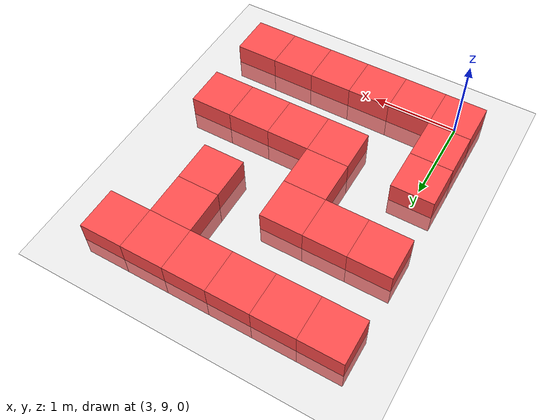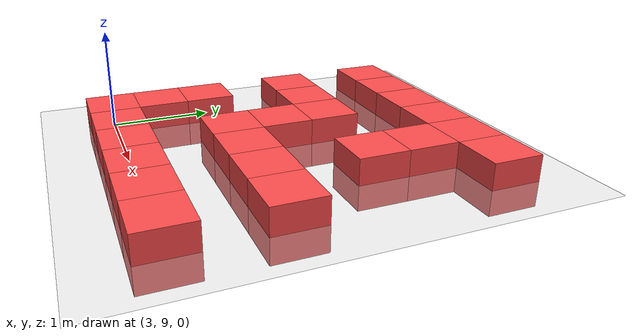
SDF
<sdf version="1.6">
 <world name="default">
  <model name="ground_plane">
   <static>1</static>
   <link name="link">
    <collision name="collision">
     <geometry><plane><normal>0 0 1</normal><size>100 100</size></plane></geometry>
     <surface><friction><ode><mu>100</mu><mu2>50</mu2></ode></friction></surface>
    </collision>
    <visual name="visual">
     <cast_shadows>0</cast_shadows>
     <geometry><plane><normal>0 0 1</normal><size>100 100</size></plane></geometry>
     <material>
      <script><uri>file://media/materials/scripts/gazebo.material</uri><name>Gazebo/Grey</name></script>
     </material>
    </visual>
   </link>
  </model>
  <model name="Box_Red_168">
   <link name="link_0">
    <inertial>
     <mass>1</mass>
     <inertia>
      <ixx>0.166667</ixx>
      <ixy>0</ixy>
      <ixz>0</ixz>
      <iyy>0.166667</iyy>
      <iyz>0</iyz>
      <izz>0.166667</izz>
     </inertia>
    </inertial>
    <visual name="visual">
     <geometry><box><size>0.5 0.5 0.5</size></box></geometry>
     <material>
      <lighting>1</lighting>
      <script><uri>file://media/materials/scripts/gazebo.material</uri><name>Gazebo/Grey</name></script>
      <ambient>1 0.3 0.3 1</ambient>
      <diffuse>0.7 0.7 0.7 1</diffuse>
      <specular>0.01 0.01 0.01 1</specular>
      <emissive>0 0 0 1</emissive>
      <shader type="vertex"><normal_map>__default__</normal_map></shader>
     </material>
    </visual>
    <collision name="collision">
     <geometry><box><size>0.5 0.5 0.5</size></box></geometry>
     <surface>
      <friction>
       <ode><mu>1</mu><mu2>1</mu2><fdir1>0 0 0</fdir1><slip1>0</slip1><slip2>0</slip2></ode>
       <torsional>
        <coefficient>1</coefficient>
        <patch_radius>0</patch_radius>
        <surface_radius>0</surface_radius>
        <use_patch_radius>1</use_patch_radius>
        <ode><slip>0</slip></ode>
       </torsional>
      </friction>
      <bounce><restitution_coefficient>0</restitution_coefficient><threshold>1e+06</threshold></bounce>
      <contact>
       <collide_without_contact>0</collide_without_contact>
       <collide_without_contact_bitmask>1</collide_without_contact_bitmask>
       <collide_bitmask>1</collide_bitmask>
       <ode>
        <soft_cfm>0</soft_cfm>
        <soft_erp>0.2</soft_erp>
        <kp>1e+13</kp>
        <kd>1</kd>
        <max_vel>0.01</max_vel>
        <min_depth>0</min_depth>
       </ode>
       <bullet>
        <split_impulse>1</split_impulse>
        <split_impulse_penetration_threshold>-0.01</split_impulse_penetration_threshold>
        <soft_cfm>0</soft_cfm>
        <soft_erp>0.2</soft_erp>
        <kp>1e+13</kp>
        <kd>1</kd>
       </bullet>
      </contact>
     </surface>
    </collision>
   </link>
   <static>0</static>
   <pose>3.000 9.000 0.000 0 0 0</pose>
  </model>
  <model name="Box_Red_169">
   <link name="link_0">
    <inertial>
     <mass>1</mass>
     <inertia>
      <ixx>0.166667</ixx>
      <ixy>0</ixy>
      <ixz>0</ixz>
      <iyy>0.166667</iyy>
      <iyz>0</iyz>
      <izz>0.166667</izz>
     </inertia>
    </inertial>
    <visual name="visual">
     <geometry><box><size>0.5 0.5 0.5</size></box></geometry>
     <material>
      <lighting>1</lighting>
      <script><uri>file://media/materials/scripts/gazebo.material</uri><name>Gazebo/Grey</name></script>
      <ambient>1 0.3 0.3 1</ambient>
      <diffuse>0.7 0.7 0.7 1</diffuse>
      <specular>0.01 0.01 0.01 1</specular>
      <emissive>0 0 0 1</emissive>
      <shader type="vertex"><normal_map>__default__</normal_map></shader>
     </material>
    </visual>
    <collision name="collision">
     <geometry><box><size>0.5 0.5 0.5</size></box></geometry>
     <surface>
      <friction>
       <ode><mu>1</mu><mu2>1</mu2><fdir1>0 0 0</fdir1><slip1>0</slip1><slip2>0</slip2></ode>
       <torsional>
        <coefficient>1</coefficient>
        <patch_radius>0</patch_radius>
        <surface_radius>0</surface_radius>
        <use_patch_radius>1</use_patch_radius>
        <ode><slip>0</slip></ode>
       </torsional>
      </friction>
      <bounce><restitution_coefficient>0</restitution_coefficient><threshold>1e+06</threshold></bounce>
      <contact>
       <collide_without_contact>0</collide_without_contact>
       <collide_without_contact_bitmask>1</collide_without_contact_bitmask>
       <collide_bitmask>1</collide_bitmask>
       <ode>
        <soft_cfm>0</soft_cfm>
        <soft_erp>0.2</soft_erp>
        <kp>1e+13</kp>
        <kd>1</kd>
        <max_vel>0.01</max_vel>
        <min_depth>0</min_depth>
       </ode>
       <bullet>
        <split_impulse>1</split_impulse>
        <split_impulse_penetration_threshold>-0.01</split_impulse_penetration_threshold>
        <soft_cfm>0</soft_cfm>
        <soft_erp>0.2</soft_erp>
        <kp>1e+13</kp>
        <kd>1</kd>
       </bullet>
      </contact>
     </surface>
    </collision>
   </link>
   <static>0</static>
   <pose>3.000 9.500 0.000 0 0 0</pose>
  </model>
  <model name="Box_Red_170">
   <link name="link_0">
    <inertial>
     <mass>1</mass>
     <inertia>
      <ixx>0.166667</ixx>
      <ixy>0</ixy>
      <ixz>0</ixz>
      <iyy>0.166667</iyy>
      <iyz>0</iyz>
      <izz>0.166667</izz>
     </inertia>
    </inertial>
    <visual name="visual">
     <geometry><box><size>0.5 0.5 0.5</size></box></geometry>
     <material>
      <lighting>1</lighting>
      <script><uri>file://media/materials/scripts/gazebo.material</uri><name>Gazebo/Grey</name></script>
      <ambient>1 0.3 0.3 1</ambient>
      <diffuse>0.7 0.7 0.7 1</diffuse>
      <specular>0.01 0.01 0.01 1</specular>
      <emissive>0 0 0 1</emissive>
      <shader type="vertex"><normal_map>__default__</normal_map></shader>
     </material>
    </visual>
    <collision name="collision">
     <geometry><box><size>0.5 0.5 0.5</size></box></geometry>
     <surface>
      <friction>
       <ode><mu>1</mu><mu2>1</mu2><fdir1>0 0 0</fdir1><slip1>0</slip1><slip2>0</slip2></ode>
       <torsional>
        <coefficient>1</coefficient>
        <patch_radius>0</patch_radius>
        <surface_radius>0</surface_radius>
        <use_patch_radius>1</use_patch_radius>
        <ode><slip>0</slip></ode>
       </torsional>
      </friction>
      <bounce><restitution_coefficient>0</restitution_coefficient><threshold>1e+06</threshold></bounce>
      <contact>
       <collide_without_contact>0</collide_without_contact>
       <collide_without_contact_bitmask>1</collide_without_contact_bitmask>
       <collide_bitmask>1</collide_bitmask>
       <ode>
        <soft_cfm>0</soft_cfm>
        <soft_erp>0.2</soft_erp>
        <kp>1e+13</kp>
        <kd>1</kd>
        <max_vel>0.01</max_vel>
        <min_depth>0</min_depth>
       </ode>
       <bullet>
        <split_impulse>1</split_impulse>
        <split_impulse_penetration_threshold>-0.01</split_impulse_penetration_threshold>
        <soft_cfm>0</soft_cfm>
        <soft_erp>0.2</soft_erp>
        <kp>1e+13</kp>
        <kd>1</kd>
       </bullet>
      </contact>
     </surface>
    </collision>
   </link>
   <static>0</static>
   <pose>3.000 10.000 0.000 0 0 0</pose>
  </model>
  <model name="Box_Red_172">
   <link name="link_0">
    <inertial>
     <mass>1</mass>
     <inertia>
      <ixx>0.166667</ixx>
      <ixy>0</ixy>
      <ixz>0</ixz>
      <iyy>0.166667</iyy>
      <iyz>0</iyz>
      <izz>0.166667</izz>
     </inertia>
    </inertial>
    <visual name="visual">
     <geometry><box><size>0.5 0.5 0.5</size></box></geometry>
     <material>
      <lighting>1</lighting>
      <script><uri>file://media/materials/scripts/gazebo.material</uri><name>Gazebo/Grey</name></script>
      <ambient>1 0.3 0.3 1</ambient>
      <diffuse>0.7 0.7 0.7 1</diffuse>
      <specular>0.01 0.01 0.01 1</specular>
      <emissive>0 0 0 1</emissive>
      <shader type="vertex"><normal_map>__default__</normal_map></shader>
     </material>
    </visual>
    <collision name="collision">
     <geometry><box><size>0.5 0.5 0.5</size></box></geometry>
     <surface>
      <friction>
       <ode><mu>1</mu><mu2>1</mu2><fdir1>0 0 0</fdir1><slip1>0</slip1><slip2>0</slip2></ode>
       <torsional>
        <coefficient>1</coefficient>
        <patch_radius>0</patch_radius>
        <surface_radius>0</surface_radius>
        <use_patch_radius>1</use_patch_radius>
        <ode><slip>0</slip></ode>
       </torsional>
      </friction>
      <bounce><restitution_coefficient>0</restitution_coefficient><threshold>1e+06</threshold></bounce>
      <contact>
       <collide_without_contact>0</collide_without_contact>
       <collide_without_contact_bitmask>1</collide_without_contact_bitmask>
       <collide_bitmask>1</collide_bitmask>
       <ode>
        <soft_cfm>0</soft_cfm>
        <soft_erp>0.2</soft_erp>
        <kp>1e+13</kp>
        <kd>1</kd>
        <max_vel>0.01</max_vel>
        <min_depth>0</min_depth>
       </ode>
       <bullet>
        <split_impulse>1</split_impulse>
        <split_impulse_penetration_threshold>-0.01</split_impulse_penetration_threshold>
        <soft_cfm>0</soft_cfm>
        <soft_erp>0.2</soft_erp>
        <kp>1e+13</kp>
        <kd>1</kd>
       </bullet>
      </contact>
     </surface>
    </collision>
   </link>
   <static>0</static>
   <pose>3.000 11.000 0.000 0 0 0</pose>
  </model>
  <model name="Box_Red_174">
   <link name="link_0">
    <inertial>
     <mass>1</mass>
     <inertia>
      <ixx>0.166667</ixx>
      <ixy>0</ixy>
      <ixz>0</ixz>
      <iyy>0.166667</iyy>
      <iyz>0</iyz>
      <izz>0.166667</izz>
     </inertia>
    </inertial>
    <visual name="visual">
     <geometry><box><size>0.5 0.5 0.5</size></box></geometry>
     <material>
      <lighting>1</lighting>
      <script><uri>file://media/materials/scripts/gazebo.material</uri><name>Gazebo/Grey</name></script>
      <ambient>1 0.3 0.3 1</ambient>
      <diffuse>0.7 0.7 0.7 1</diffuse>
      <specular>0.01 0.01 0.01 1</specular>
      <emissive>0 0 0 1</emissive>
      <shader type="vertex"><normal_map>__default__</normal_map></shader>
     </material>
    </visual>
    <collision name="collision">
     <geometry><box><size>0.5 0.5 0.5</size></box></geometry>
     <surface>
      <friction>
       <ode><mu>1</mu><mu2>1</mu2><fdir1>0 0 0</fdir1><slip1>0</slip1><slip2>0</slip2></ode>
       <torsional>
        <coefficient>1</coefficient>
        <patch_radius>0</patch_radius>
        <surface_radius>0</surface_radius>
        <use_patch_radius>1</use_patch_radius>
        <ode><slip>0</slip></ode>
       </torsional>
      </friction>
      <bounce><restitution_coefficient>0</restitution_coefficient><threshold>1e+06</threshold></bounce>
      <contact>
       <collide_without_contact>0</collide_without_contact>
       <collide_without_contact_bitmask>1</collide_without_contact_bitmask>
       <collide_bitmask>1</collide_bitmask>
       <ode>
        <soft_cfm>0</soft_cfm>
        <soft_erp>0.2</soft_erp>
        <kp>1e+13</kp>
        <kd>1</kd>
        <max_vel>0.01</max_vel>
        <min_depth>0</min_depth>
       </ode>
       <bullet>
        <split_impulse>1</split_impulse>
        <split_impulse_penetration_threshold>-0.01</split_impulse_penetration_threshold>
        <soft_cfm>0</soft_cfm>
        <soft_erp>0.2</soft_erp>
        <kp>1e+13</kp>
        <kd>1</kd>
       </bullet>
      </contact>
     </surface>
    </collision>
   </link>
   <static>0</static>
   <pose>3.000 12.000 0.000 0 0 0</pose>
  </model>
  <model name="Box_Red_193">
   <link name="link_0">
    <inertial>
     <mass>1</mass>
     <inertia>
      <ixx>0.166667</ixx>
      <ixy>0</ixy>
      <ixz>0</ixz>
      <iyy>0.166667</iyy>
      <iyz>0</iyz>
      <izz>0.166667</izz>
     </inertia>
    </inertial>
    <visual name="visual">
     <geometry><box><size>0.5 0.5 0.5</size></box></geometry>
     <material>
      <lighting>1</lighting>
      <script><uri>file://media/materials/scripts/gazebo.material</uri><name>Gazebo/Grey</name></script>
      <ambient>1 0.3 0.3 1</ambient>
      <diffuse>0.7 0.7 0.7 1</diffuse>
      <specular>0.01 0.01 0.01 1</specular>
      <emissive>0 0 0 1</emissive>
      <shader type="vertex"><normal_map>__default__</normal_map></shader>
     </material>
    </visual>
    <collision name="collision">
     <geometry><box><size>0.5 0.5 0.5</size></box></geometry>
     <surface>
      <friction>
       <ode><mu>1</mu><mu2>1</mu2><fdir1>0 0 0</fdir1><slip1>0</slip1><slip2>0</slip2></ode>
       <torsional>
        <coefficient>1</coefficient>
        <patch_radius>0</patch_radius>
        <surface_radius>0</surface_radius>
        <use_patch_radius>1</use_patch_radius>
        <ode><slip>0</slip></ode>
       </torsional>
      </friction>
      <bounce><restitution_coefficient>0</restitution_coefficient><threshold>1e+06</threshold></bounce>
      <contact>
       <collide_without_contact>0</collide_without_contact>
       <collide_without_contact_bitmask>1</collide_without_contact_bitmask>
       <collide_bitmask>1</collide_bitmask>
       <ode>
        <soft_cfm>0</soft_cfm>
        <soft_erp>0.2</soft_erp>
        <kp>1e+13</kp>
        <kd>1</kd>
        <max_vel>0.01</max_vel>
        <min_depth>0</min_depth>
       </ode>
       <bullet>
        <split_impulse>1</split_impulse>
        <split_impulse_penetration_threshold>-0.01</split_impulse_penetration_threshold>
        <soft_cfm>0</soft_cfm>
        <soft_erp>0.2</soft_erp>
        <kp>1e+13</kp>
        <kd>1</kd>
       </bullet>
      </contact>
     </surface>
    </collision>
   </link>
   <static>0</static>
   <pose>3.500 9.000 0.000 0 0 0</pose>
  </model>
  <model name="Box_Red_197">
   <link name="link_0">
    <inertial>
     <mass>1</mass>
     <inertia>
      <ixx>0.166667</ixx>
      <ixy>0</ixy>
      <ixz>0</ixz>
      <iyy>0.166667</iyy>
      <iyz>0</iyz>
      <izz>0.166667</izz>
     </inertia>
    </inertial>
    <visual name="visual">
     <geometry><box><size>0.5 0.5 0.5</size></box></geometry>
     <material>
      <lighting>1</lighting>
      <script><uri>file://media/materials/scripts/gazebo.material</uri><name>Gazebo/Grey</name></script>
      <ambient>1 0.3 0.3 1</ambient>
      <diffuse>0.7 0.7 0.7 1</diffuse>
      <specular>0.01 0.01 0.01 1</specular>
      <emissive>0 0 0 1</emissive>
      <shader type="vertex"><normal_map>__default__</normal_map></shader>
     </material>
    </visual>
    <collision name="collision">
     <geometry><box><size>0.5 0.5 0.5</size></box></geometry>
     <surface>
      <friction>
       <ode><mu>1</mu><mu2>1</mu2><fdir1>0 0 0</fdir1><slip1>0</slip1><slip2>0</slip2></ode>
       <torsional>
        <coefficient>1</coefficient>
        <patch_radius>0</patch_radius>
        <surface_radius>0</surface_radius>
        <use_patch_radius>1</use_patch_radius>
        <ode><slip>0</slip></ode>
       </torsional>
      </friction>
      <bounce><restitution_coefficient>0</restitution_coefficient><threshold>1e+06</threshold></bounce>
      <contact>
       <collide_without_contact>0</collide_without_contact>
       <collide_without_contact_bitmask>1</collide_without_contact_bitmask>
       <collide_bitmask>1</collide_bitmask>
       <ode>
        <soft_cfm>0</soft_cfm>
        <soft_erp>0.2</soft_erp>
        <kp>1e+13</kp>
        <kd>1</kd>
        <max_vel>0.01</max_vel>
        <min_depth>0</min_depth>
       </ode>
       <bullet>
        <split_impulse>1</split_impulse>
        <split_impulse_penetration_threshold>-0.01</split_impulse_penetration_threshold>
        <soft_cfm>0</soft_cfm>
        <soft_erp>0.2</soft_erp>
        <kp>1e+13</kp>
        <kd>1</kd>
       </bullet>
      </contact>
     </surface>
    </collision>
   </link>
   <static>0</static>
   <pose>3.500 11.000 0.000 0 0 0</pose>
  </model>
  <model name="Box_Red_199">
   <link name="link_0">
    <inertial>
     <mass>1</mass>
     <inertia>
      <ixx>0.166667</ixx>
      <ixy>0</ixy>
      <ixz>0</ixz>
      <iyy>0.166667</iyy>
      <iyz>0</iyz>
      <izz>0.166667</izz>
     </inertia>
    </inertial>
    <visual name="visual">
     <geometry><box><size>0.5 0.5 0.5</size></box></geometry>
     <material>
      <lighting>1</lighting>
      <script><uri>file://media/materials/scripts/gazebo.material</uri><name>Gazebo/Grey</name></script>
      <ambient>1 0.3 0.3 1</ambient>
      <diffuse>0.7 0.7 0.7 1</diffuse>
      <specular>0.01 0.01 0.01 1</specular>
      <emissive>0 0 0 1</emissive>
      <shader type="vertex"><normal_map>__default__</normal_map></shader>
     </material>
    </visual>
    <collision name="collision">
     <geometry><box><size>0.5 0.5 0.5</size></box></geometry>
     <surface>
      <friction>
       <ode><mu>1</mu><mu2>1</mu2><fdir1>0 0 0</fdir1><slip1>0</slip1><slip2>0</slip2></ode>
       <torsional>
        <coefficient>1</coefficient>
        <patch_radius>0</patch_radius>
        <surface_radius>0</surface_radius>
        <use_patch_radius>1</use_patch_radius>
        <ode><slip>0</slip></ode>
       </torsional>
      </friction>
      <bounce><restitution_coefficient>0</restitution_coefficient><threshold>1e+06</threshold></bounce>
      <contact>
       <collide_without_contact>0</collide_without_contact>
       <collide_without_contact_bitmask>1</collide_without_contact_bitmask>
       <collide_bitmask>1</collide_bitmask>
       <ode>
        <soft_cfm>0</soft_cfm>
        <soft_erp>0.2</soft_erp>
        <kp>1e+13</kp>
        <kd>1</kd>
        <max_vel>0.01</max_vel>
        <min_depth>0</min_depth>
       </ode>
       <bullet>
        <split_impulse>1</split_impulse>
        <split_impulse_penetration_threshold>-0.01</split_impulse_penetration_threshold>
        <soft_cfm>0</soft_cfm>
        <soft_erp>0.2</soft_erp>
        <kp>1e+13</kp>
        <kd>1</kd>
       </bullet>
      </contact>
     </surface>
    </collision>
   </link>
   <static>0</static>
   <pose>3.500 12.000 0.000 0 0 0</pose>
  </model>
  <model name="Box_Red_218">
   <link name="link_0">
    <inertial>
     <mass>1</mass>
     <inertia>
      <ixx>0.166667</ixx>
      <ixy>0</ixy>
      <ixz>0</ixz>
      <iyy>0.166667</iyy>
      <iyz>0</iyz>
      <izz>0.166667</izz>
     </inertia>
    </inertial>
    <visual name="visual">
     <geometry><box><size>0.5 0.5 0.5</size></box></geometry>
     <material>
      <lighting>1</lighting>
      <script><uri>file://media/materials/scripts/gazebo.material</uri><name>Gazebo/Grey</name></script>
      <ambient>1 0.3 0.3 1</ambient>
      <diffuse>0.7 0.7 0.7 1</diffuse>
      <specular>0.01 0.01 0.01 1</specular>
      <emissive>0 0 0 1</emissive>
      <shader type="vertex"><normal_map>__default__</normal_map></shader>
     </material>
    </visual>
    <collision name="collision">
     <geometry><box><size>0.5 0.5 0.5</size></box></geometry>
     <surface>
      <friction>
       <ode><mu>1</mu><mu2>1</mu2><fdir1>0 0 0</fdir1><slip1>0</slip1><slip2>0</slip2></ode>
       <torsional>
        <coefficient>1</coefficient>
        <patch_radius>0</patch_radius>
        <surface_radius>0</surface_radius>
        <use_patch_radius>1</use_patch_radius>
        <ode><slip>0</slip></ode>
       </torsional>
      </friction>
      <bounce><restitution_coefficient>0</restitution_coefficient><threshold>1e+06</threshold></bounce>
      <contact>
       <collide_without_contact>0</collide_without_contact>
       <collide_without_contact_bitmask>1</collide_without_contact_bitmask>
       <collide_bitmask>1</collide_bitmask>
       <ode>
        <soft_cfm>0</soft_cfm>
        <soft_erp>0.2</soft_erp>
        <kp>1e+13</kp>
        <kd>1</kd>
        <max_vel>0.01</max_vel>
        <min_depth>0</min_depth>
       </ode>
       <bullet>
        <split_impulse>1</split_impulse>
        <split_impulse_penetration_threshold>-0.01</split_impulse_penetration_threshold>
        <soft_cfm>0</soft_cfm>
        <soft_erp>0.2</soft_erp>
        <kp>1e+13</kp>
        <kd>1</kd>
       </bullet>
      </contact>
     </surface>
    </collision>
   </link>
   <static>0</static>
   <pose>4.000 9.000 0.000 0 0 0</pose>
  </model>
  <model name="Box_Red_220">
   <link name="link_0">
    <inertial>
     <mass>1</mass>
     <inertia>
      <ixx>0.166667</ixx>
      <ixy>0</ixy>
      <ixz>0</ixz>
      <iyy>0.166667</iyy>
      <iyz>0</iyz>
      <izz>0.166667</izz>
     </inertia>
    </inertial>
    <visual name="visual">
     <geometry><box><size>0.5 0.5 0.5</size></box></geometry>
     <material>
      <lighting>1</lighting>
      <script><uri>file://media/materials/scripts/gazebo.material</uri><name>Gazebo/Grey</name></script>
      <ambient>1 0.3 0.3 1</ambient>
      <diffuse>0.7 0.7 0.7 1</diffuse>
      <specular>0.01 0.01 0.01 1</specular>
      <emissive>0 0 0 1</emissive>
      <shader type="vertex"><normal_map>__default__</normal_map></shader>
     </material>
    </visual>
    <collision name="collision">
     <geometry><box><size>0.5 0.5 0.5</size></box></geometry>
     <surface>
      <friction>
       <ode><mu>1</mu><mu2>1</mu2><fdir1>0 0 0</fdir1><slip1>0</slip1><slip2>0</slip2></ode>
       <torsional>
        <coefficient>1</coefficient>
        <patch_radius>0</patch_radius>
        <surface_radius>0</surface_radius>
        <use_patch_radius>1</use_patch_radius>
        <ode><slip>0</slip></ode>
       </torsional>
      </friction>
      <bounce><restitution_coefficient>0</restitution_coefficient><threshold>1e+06</threshold></bounce>
      <contact>
       <collide_without_contact>0</collide_without_contact>
       <collide_without_contact_bitmask>1</collide_without_contact_bitmask>
       <collide_bitmask>1</collide_bitmask>
       <ode>
        <soft_cfm>0</soft_cfm>
        <soft_erp>0.2</soft_erp>
        <kp>1e+13</kp>
        <kd>1</kd>
        <max_vel>0.01</max_vel>
        <min_depth>0</min_depth>
       </ode>
       <bullet>
        <split_impulse>1</split_impulse>
        <split_impulse_penetration_threshold>-0.01</split_impulse_penetration_threshold>
        <soft_cfm>0</soft_cfm>
        <soft_erp>0.2</soft_erp>
        <kp>1e+13</kp>
        <kd>1</kd>
       </bullet>
      </contact>
     </surface>
    </collision>
   </link>
   <static>0</static>
   <pose>4.000 10.000 0.000 0 0 0</pose>
  </model>
  <model name="Box_Red_221">
   <link name="link_0">
    <inertial>
     <mass>1</mass>
     <inertia>
      <ixx>0.166667</ixx>
      <ixy>0</ixy>
      <ixz>0</ixz>
      <iyy>0.166667</iyy>
      <iyz>0</iyz>
      <izz>0.166667</izz>
     </inertia>
    </inertial>
    <visual name="visual">
     <geometry><box><size>0.5 0.5 0.5</size></box></geometry>
     <material>
      <lighting>1</lighting>
      <script><uri>file://media/materials/scripts/gazebo.material</uri><name>Gazebo/Grey</name></script>
      <ambient>1 0.3 0.3 1</ambient>
      <diffuse>0.7 0.7 0.7 1</diffuse>
      <specular>0.01 0.01 0.01 1</specular>
      <emissive>0 0 0 1</emissive>
      <shader type="vertex"><normal_map>__default__</normal_map></shader>
     </material>
    </visual>
    <collision name="collision">
     <geometry><box><size>0.5 0.5 0.5</size></box></geometry>
     <surface>
      <friction>
       <ode><mu>1</mu><mu2>1</mu2><fdir1>0 0 0</fdir1><slip1>0</slip1><slip2>0</slip2></ode>
       <torsional>
        <coefficient>1</coefficient>
        <patch_radius>0</patch_radius>
        <surface_radius>0</surface_radius>
        <use_patch_radius>1</use_patch_radius>
        <ode><slip>0</slip></ode>
       </torsional>
      </friction>
      <bounce><restitution_coefficient>0</restitution_coefficient><threshold>1e+06</threshold></bounce>
      <contact>
       <collide_without_contact>0</collide_without_contact>
       <collide_without_contact_bitmask>1</collide_without_contact_bitmask>
       <collide_bitmask>1</collide_bitmask>
       <ode>
        <soft_cfm>0</soft_cfm>
        <soft_erp>0.2</soft_erp>
        <kp>1e+13</kp>
        <kd>1</kd>
        <max_vel>0.01</max_vel>
        <min_depth>0</min_depth>
       </ode>
       <bullet>
        <split_impulse>1</split_impulse>
        <split_impulse_penetration_threshold>-0.01</split_impulse_penetration_threshold>
        <soft_cfm>0</soft_cfm>
        <soft_erp>0.2</soft_erp>
        <kp>1e+13</kp>
        <kd>1</kd>
       </bullet>
      </contact>
     </surface>
    </collision>
   </link>
   <static>0</static>
   <pose>4.000 10.500 0.000 0 0 0</pose>
  </model>
  <model name="Box_Red_222">
   <link name="link_0">
    <inertial>
     <mass>1</mass>
     <inertia>
      <ixx>0.166667</ixx>
      <ixy>0</ixy>
      <ixz>0</ixz>
      <iyy>0.166667</iyy>
      <iyz>0</iyz>
      <izz>0.166667</izz>
     </inertia>
    </inertial>
    <visual name="visual">
     <geometry><box><size>0.5 0.5 0.5</size></box></geometry>
     <material>
      <lighting>1</lighting>
      <script><uri>file://media/materials/scripts/gazebo.material</uri><name>Gazebo/Grey</name></script>
      <ambient>1 0.3 0.3 1</ambient>
      <diffuse>0.7 0.7 0.7 1</diffuse>
      <specular>0.01 0.01 0.01 1</specular>
      <emissive>0 0 0 1</emissive>
      <shader type="vertex"><normal_map>__default__</normal_map></shader>
     </material>
    </visual>
    <collision name="collision">
     <geometry><box><size>0.5 0.5 0.5</size></box></geometry>
     <surface>
      <friction>
       <ode><mu>1</mu><mu2>1</mu2><fdir1>0 0 0</fdir1><slip1>0</slip1><slip2>0</slip2></ode>
       <torsional>
        <coefficient>1</coefficient>
        <patch_radius>0</patch_radius>
        <surface_radius>0</surface_radius>
        <use_patch_radius>1</use_patch_radius>
        <ode><slip>0</slip></ode>
       </torsional>
      </friction>
      <bounce><restitution_coefficient>0</restitution_coefficient><threshold>1e+06</threshold></bounce>
      <contact>
       <collide_without_contact>0</collide_without_contact>
       <collide_without_contact_bitmask>1</collide_without_contact_bitmask>
       <collide_bitmask>1</collide_bitmask>
       <ode>
        <soft_cfm>0</soft_cfm>
        <soft_erp>0.2</soft_erp>
        <kp>1e+13</kp>
        <kd>1</kd>
        <max_vel>0.01</max_vel>
        <min_depth>0</min_depth>
       </ode>
       <bullet>
        <split_impulse>1</split_impulse>
        <split_impulse_penetration_threshold>-0.01</split_impulse_penetration_threshold>
        <soft_cfm>0</soft_cfm>
        <soft_erp>0.2</soft_erp>
        <kp>1e+13</kp>
        <kd>1</kd>
       </bullet>
      </contact>
     </surface>
    </collision>
   </link>
   <static>0</static>
   <pose>4.000 11.000 0.000 0 0 0</pose>
  </model>
  <model name="Box_Red_224">
   <link name="link_0">
    <inertial>
     <mass>1</mass>
     <inertia>
      <ixx>0.166667</ixx>
      <ixy>0</ixy>
      <ixz>0</ixz>
      <iyy>0.166667</iyy>
      <iyz>0</iyz>
      <izz>0.166667</izz>
     </inertia>
    </inertial>
    <visual name="visual">
     <geometry><box><size>0.5 0.5 0.5</size></box></geometry>
     <material>
      <lighting>1</lighting>
      <script><uri>file://media/materials/scripts/gazebo.material</uri><name>Gazebo/Grey</name></script>
      <ambient>1 0.3 0.3 1</ambient>
      <diffuse>0.7 0.7 0.7 1</diffuse>
      <specular>0.01 0.01 0.01 1</specular>
      <emissive>0 0 0 1</emissive>
      <shader type="vertex"><normal_map>__default__</normal_map></shader>
     </material>
    </visual>
    <collision name="collision">
     <geometry><box><size>0.5 0.5 0.5</size></box></geometry>
     <surface>
      <friction>
       <ode><mu>1</mu><mu2>1</mu2><fdir1>0 0 0</fdir1><slip1>0</slip1><slip2>0</slip2></ode>
       <torsional>
        <coefficient>1</coefficient>
        <patch_radius>0</patch_radius>
        <surface_radius>0</surface_radius>
        <use_patch_radius>1</use_patch_radius>
        <ode><slip>0</slip></ode>
       </torsional>
      </friction>
      <bounce><restitution_coefficient>0</restitution_coefficient><threshold>1e+06</threshold></bounce>
      <contact>
       <collide_without_contact>0</collide_without_contact>
       <collide_without_contact_bitmask>1</collide_without_contact_bitmask>
       <collide_bitmask>1</collide_bitmask>
       <ode>
        <soft_cfm>0</soft_cfm>
        <soft_erp>0.2</soft_erp>
        <kp>1e+13</kp>
        <kd>1</kd>
        <max_vel>0.01</max_vel>
        <min_depth>0</min_depth>
       </ode>
       <bullet>
        <split_impulse>1</split_impulse>
        <split_impulse_penetration_threshold>-0.01</split_impulse_penetration_threshold>
        <soft_cfm>0</soft_cfm>
        <soft_erp>0.2</soft_erp>
        <kp>1e+13</kp>
        <kd>1</kd>
       </bullet>
      </contact>
     </surface>
    </collision>
   </link>
   <static>0</static>
   <pose>4.000 12.000 0.000 0 0 0</pose>
  </model>
  <model name="Box_Red_243">
   <link name="link_0">
    <inertial>
     <mass>1</mass>
     <inertia>
      <ixx>0.166667</ixx>
      <ixy>0</ixy>
      <ixz>0</ixz>
      <iyy>0.166667</iyy>
      <iyz>0</iyz>
      <izz>0.166667</izz>
     </inertia>
    </inertial>
    <visual name="visual">
     <geometry><box><size>0.5 0.5 0.5</size></box></geometry>
     <material>
      <lighting>1</lighting>
      <script><uri>file://media/materials/scripts/gazebo.material</uri><name>Gazebo/Grey</name></script>
      <ambient>1 0.3 0.3 1</ambient>
      <diffuse>0.7 0.7 0.7 1</diffuse>
      <specular>0.01 0.01 0.01 1</specular>
      <emissive>0 0 0 1</emissive>
      <shader type="vertex"><normal_map>__default__</normal_map></shader>
     </material>
    </visual>
    <collision name="collision">
     <geometry><box><size>0.5 0.5 0.5</size></box></geometry>
     <surface>
      <friction>
       <ode><mu>1</mu><mu2>1</mu2><fdir1>0 0 0</fdir1><slip1>0</slip1><slip2>0</slip2></ode>
       <torsional>
        <coefficient>1</coefficient>
        <patch_radius>0</patch_radius>
        <surface_radius>0</surface_radius>
        <use_patch_radius>1</use_patch_radius>
        <ode><slip>0</slip></ode>
       </torsional>
      </friction>
      <bounce><restitution_coefficient>0</restitution_coefficient><threshold>1e+06</threshold></bounce>
      <contact>
       <collide_without_contact>0</collide_without_contact>
       <collide_without_contact_bitmask>1</collide_without_contact_bitmask>
       <collide_bitmask>1</collide_bitmask>
       <ode>
        <soft_cfm>0</soft_cfm>
        <soft_erp>0.2</soft_erp>
        <kp>1e+13</kp>
        <kd>1</kd>
        <max_vel>0.01</max_vel>
        <min_depth>0</min_depth>
       </ode>
       <bullet>
        <split_impulse>1</split_impulse>
        <split_impulse_penetration_threshold>-0.01</split_impulse_penetration_threshold>
        <soft_cfm>0</soft_cfm>
        <soft_erp>0.2</soft_erp>
        <kp>1e+13</kp>
        <kd>1</kd>
       </bullet>
      </contact>
     </surface>
    </collision>
   </link>
   <static>0</static>
   <pose>4.500 9.000 0.000 0 0 0</pose>
  </model>
  <model name="Box_Red_245">
   <link name="link_0">
    <inertial>
     <mass>1</mass>
     <inertia>
      <ixx>0.166667</ixx>
      <ixy>0</ixy>
      <ixz>0</ixz>
      <iyy>0.166667</iyy>
      <iyz>0</iyz>
      <izz>0.166667</izz>
     </inertia>
    </inertial>
    <visual name="visual">
     <geometry><box><size>0.5 0.5 0.5</size></box></geometry>
     <material>
      <lighting>1</lighting>
      <script><uri>file://media/materials/scripts/gazebo.material</uri><name>Gazebo/Grey</name></script>
      <ambient>1 0.3 0.3 1</ambient>
      <diffuse>0.7 0.7 0.7 1</diffuse>
      <specular>0.01 0.01 0.01 1</specular>
      <emissive>0 0 0 1</emissive>
      <shader type="vertex"><normal_map>__default__</normal_map></shader>
     </material>
    </visual>
    <collision name="collision">
     <geometry><box><size>0.5 0.5 0.5</size></box></geometry>
     <surface>
      <friction>
       <ode><mu>1</mu><mu2>1</mu2><fdir1>0 0 0</fdir1><slip1>0</slip1><slip2>0</slip2></ode>
       <torsional>
        <coefficient>1</coefficient>
        <patch_radius>0</patch_radius>
        <surface_radius>0</surface_radius>
        <use_patch_radius>1</use_patch_radius>
        <ode><slip>0</slip></ode>
       </torsional>
      </friction>
      <bounce><restitution_coefficient>0</restitution_coefficient><threshold>1e+06</threshold></bounce>
      <contact>
       <collide_without_contact>0</collide_without_contact>
       <collide_without_contact_bitmask>1</collide_without_contact_bitmask>
       <collide_bitmask>1</collide_bitmask>
       <ode>
        <soft_cfm>0</soft_cfm>
        <soft_erp>0.2</soft_erp>
        <kp>1e+13</kp>
        <kd>1</kd>
        <max_vel>0.01</max_vel>
        <min_depth>0</min_depth>
       </ode>
       <bullet>
        <split_impulse>1</split_impulse>
        <split_impulse_penetration_threshold>-0.01</split_impulse_penetration_threshold>
        <soft_cfm>0</soft_cfm>
        <soft_erp>0.2</soft_erp>
        <kp>1e+13</kp>
        <kd>1</kd>
       </bullet>
      </contact>
     </surface>
    </collision>
   </link>
   <static>0</static>
   <pose>4.500 10.000 0.000 0 0 0</pose>
  </model>
  <model name="Box_Red_249">
   <link name="link_0">
    <inertial>
     <mass>1</mass>
     <inertia>
      <ixx>0.166667</ixx>
      <ixy>0</ixy>
      <ixz>0</ixz>
      <iyy>0.166667</iyy>
      <iyz>0</iyz>
      <izz>0.166667</izz>
     </inertia>
    </inertial>
    <visual name="visual">
     <geometry><box><size>0.5 0.5 0.5</size></box></geometry>
     <material>
      <lighting>1</lighting>
      <script><uri>file://media/materials/scripts/gazebo.material</uri><name>Gazebo/Grey</name></script>
      <ambient>1 0.3 0.3 1</ambient>
      <diffuse>0.7 0.7 0.7 1</diffuse>
      <specular>0.01 0.01 0.01 1</specular>
      <emissive>0 0 0 1</emissive>
      <shader type="vertex"><normal_map>__default__</normal_map></shader>
     </material>
    </visual>
    <collision name="collision">
     <geometry><box><size>0.5 0.5 0.5</size></box></geometry>
     <surface>
      <friction>
       <ode><mu>1</mu><mu2>1</mu2><fdir1>0 0 0</fdir1><slip1>0</slip1><slip2>0</slip2></ode>
       <torsional>
        <coefficient>1</coefficient>
        <patch_radius>0</patch_radius>
        <surface_radius>0</surface_radius>
        <use_patch_radius>1</use_patch_radius>
        <ode><slip>0</slip></ode>
       </torsional>
      </friction>
      <bounce><restitution_coefficient>0</restitution_coefficient><threshold>1e+06</threshold></bounce>
      <contact>
       <collide_without_contact>0</collide_without_contact>
       <collide_without_contact_bitmask>1</collide_without_contact_bitmask>
       <collide_bitmask>1</collide_bitmask>
       <ode>
        <soft_cfm>0</soft_cfm>
        <soft_erp>0.2</soft_erp>
        <kp>1e+13</kp>
        <kd>1</kd>
        <max_vel>0.01</max_vel>
        <min_depth>0</min_depth>
       </ode>
       <bullet>
        <split_impulse>1</split_impulse>
        <split_impulse_penetration_threshold>-0.01</split_impulse_penetration_threshold>
        <soft_cfm>0</soft_cfm>
        <soft_erp>0.2</soft_erp>
        <kp>1e+13</kp>
        <kd>1</kd>
       </bullet>
      </contact>
     </surface>
    </collision>
   </link>
   <static>0</static>
   <pose>4.500 12.000 0.000 0 0 0</pose>
  </model>
  <model name="Box_Red_268">
   <link name="link_0">
    <inertial>
     <mass>1</mass>
     <inertia>
      <ixx>0.166667</ixx>
      <ixy>0</ixy>
      <ixz>0</ixz>
      <iyy>0.166667</iyy>
      <iyz>0</iyz>
      <izz>0.166667</izz>
     </inertia>
    </inertial>
    <visual name="visual">
     <geometry><box><size>0.5 0.5 0.5</size></box></geometry>
     <material>
      <lighting>1</lighting>
      <script><uri>file://media/materials/scripts/gazebo.material</uri><name>Gazebo/Grey</name></script>
      <ambient>1 0.3 0.3 1</ambient>
      <diffuse>0.7 0.7 0.7 1</diffuse>
      <specular>0.01 0.01 0.01 1</specular>
      <emissive>0 0 0 1</emissive>
      <shader type="vertex"><normal_map>__default__</normal_map></shader>
     </material>
    </visual>
    <collision name="collision">
     <geometry><box><size>0.5 0.5 0.5</size></box></geometry>
     <surface>
      <friction>
       <ode><mu>1</mu><mu2>1</mu2><fdir1>0 0 0</fdir1><slip1>0</slip1><slip2>0</slip2></ode>
       <torsional>
        <coefficient>1</coefficient>
        <patch_radius>0</patch_radius>
        <surface_radius>0</surface_radius>
        <use_patch_radius>1</use_patch_radius>
        <ode><slip>0</slip></ode>
       </torsional>
      </friction>
      <bounce><restitution_coefficient>0</restitution_coefficient><threshold>1e+06</threshold></bounce>
      <contact>
       <collide_without_contact>0</collide_without_contact>
       <collide_without_contact_bitmask>1</collide_without_contact_bitmask>
       <collide_bitmask>1</collide_bitmask>
       <ode>
        <soft_cfm>0</soft_cfm>
        <soft_erp>0.2</soft_erp>
        <kp>1e+13</kp>
        <kd>1</kd>
        <max_vel>0.01</max_vel>
        <min_depth>0</min_depth>
       </ode>
       <bullet>
        <split_impulse>1</split_impulse>
        <split_impulse_penetration_threshold>-0.01</split_impulse_penetration_threshold>
        <soft_cfm>0</soft_cfm>
        <soft_erp>0.2</soft_erp>
        <kp>1e+13</kp>
        <kd>1</kd>
       </bullet>
      </contact>
     </surface>
    </collision>
   </link>
   <static>0</static>
   <pose>5.000 9.000 0.000 0 0 0</pose>
  </model>
  <model name="Box_Red_270">
   <link name="link_0">
    <inertial>
     <mass>1</mass>
     <inertia>
      <ixx>0.166667</ixx>
      <ixy>0</ixy>
      <ixz>0</ixz>
      <iyy>0.166667</iyy>
      <iyz>0</iyz>
      <izz>0.166667</izz>
     </inertia>
    </inertial>
    <visual name="visual">
     <geometry><box><size>0.5 0.5 0.5</size></box></geometry>
     <material>
      <lighting>1</lighting>
      <script><uri>file://media/materials/scripts/gazebo.material</uri><name>Gazebo/Grey</name></script>
      <ambient>1 0.3 0.3 1</ambient>
      <diffuse>0.7 0.7 0.7 1</diffuse>
      <specular>0.01 0.01 0.01 1</specular>
      <emissive>0 0 0 1</emissive>
      <shader type="vertex"><normal_map>__default__</normal_map></shader>
     </material>
    </visual>
    <collision name="collision">
     <geometry><box><size>0.5 0.5 0.5</size></box></geometry>
     <surface>
      <friction>
       <ode><mu>1</mu><mu2>1</mu2><fdir1>0 0 0</fdir1><slip1>0</slip1><slip2>0</slip2></ode>
       <torsional>
        <coefficient>1</coefficient>
        <patch_radius>0</patch_radius>
        <surface_radius>0</surface_radius>
        <use_patch_radius>1</use_patch_radius>
        <ode><slip>0</slip></ode>
       </torsional>
      </friction>
      <bounce><restitution_coefficient>0</restitution_coefficient><threshold>1e+06</threshold></bounce>
      <contact>
       <collide_without_contact>0</collide_without_contact>
       <collide_without_contact_bitmask>1</collide_without_contact_bitmask>
       <collide_bitmask>1</collide_bitmask>
       <ode>
        <soft_cfm>0</soft_cfm>
        <soft_erp>0.2</soft_erp>
        <kp>1e+13</kp>
        <kd>1</kd>
        <max_vel>0.01</max_vel>
        <min_depth>0</min_depth>
       </ode>
       <bullet>
        <split_impulse>1</split_impulse>
        <split_impulse_penetration_threshold>-0.01</split_impulse_penetration_threshold>
        <soft_cfm>0</soft_cfm>
        <soft_erp>0.2</soft_erp>
        <kp>1e+13</kp>
        <kd>1</kd>
       </bullet>
      </contact>
     </surface>
    </collision>
   </link>
   <static>0</static>
   <pose>5.000 10.000 0.000 0 0 0</pose>
  </model>
  <model name="Box_Red_272">
   <link name="link_0">
    <inertial>
     <mass>1</mass>
     <inertia>
      <ixx>0.166667</ixx>
      <ixy>0</ixy>
      <ixz>0</ixz>
      <iyy>0.166667</iyy>
      <iyz>0</iyz>
      <izz>0.166667</izz>
     </inertia>
    </inertial>
    <visual name="visual">
     <geometry><box><size>0.5 0.5 0.5</size></box></geometry>
     <material>
      <lighting>1</lighting>
      <script><uri>file://media/materials/scripts/gazebo.material</uri><name>Gazebo/Grey</name></script>
      <ambient>1 0.3 0.3 1</ambient>
      <diffuse>0.7 0.7 0.7 1</diffuse>
      <specular>0.01 0.01 0.01 1</specular>
      <emissive>0 0 0 1</emissive>
      <shader type="vertex"><normal_map>__default__</normal_map></shader>
     </material>
    </visual>
    <collision name="collision">
     <geometry><box><size>0.5 0.5 0.5</size></box></geometry>
     <surface>
      <friction>
       <ode><mu>1</mu><mu2>1</mu2><fdir1>0 0 0</fdir1><slip1>0</slip1><slip2>0</slip2></ode>
       <torsional>
        <coefficient>1</coefficient>
        <patch_radius>0</patch_radius>
        <surface_radius>0</surface_radius>
        <use_patch_radius>1</use_patch_radius>
        <ode><slip>0</slip></ode>
       </torsional>
      </friction>
      <bounce><restitution_coefficient>0</restitution_coefficient><threshold>1e+06</threshold></bounce>
      <contact>
       <collide_without_contact>0</collide_without_contact>
       <collide_without_contact_bitmask>1</collide_without_contact_bitmask>
       <collide_bitmask>1</collide_bitmask>
       <ode>
        <soft_cfm>0</soft_cfm>
        <soft_erp>0.2</soft_erp>
        <kp>1e+13</kp>
        <kd>1</kd>
        <max_vel>0.01</max_vel>
        <min_depth>0</min_depth>
       </ode>
       <bullet>
        <split_impulse>1</split_impulse>
        <split_impulse_penetration_threshold>-0.01</split_impulse_penetration_threshold>
        <soft_cfm>0</soft_cfm>
        <soft_erp>0.2</soft_erp>
        <kp>1e+13</kp>
        <kd>1</kd>
       </bullet>
      </contact>
     </surface>
    </collision>
   </link>
   <static>0</static>
   <pose>5.000 11.000 0.000 0 0 0</pose>
  </model>
  <model name="Box_Red_273">
   <link name="link_0">
    <inertial>
     <mass>1</mass>
     <inertia>
      <ixx>0.166667</ixx>
      <ixy>0</ixy>
      <ixz>0</ixz>
      <iyy>0.166667</iyy>
      <iyz>0</iyz>
      <izz>0.166667</izz>
     </inertia>
    </inertial>
    <visual name="visual">
     <geometry><box><size>0.5 0.5 0.5</size></box></geometry>
     <material>
      <lighting>1</lighting>
      <script><uri>file://media/materials/scripts/gazebo.material</uri><name>Gazebo/Grey</name></script>
      <ambient>1 0.3 0.3 1</ambient>
      <diffuse>0.7 0.7 0.7 1</diffuse>
      <specular>0.01 0.01 0.01 1</specular>
      <emissive>0 0 0 1</emissive>
      <shader type="vertex"><normal_map>__default__</normal_map></shader>
     </material>
    </visual>
    <collision name="collision">
     <geometry><box><size>0.5 0.5 0.5</size></box></geometry>
     <surface>
      <friction>
       <ode><mu>1</mu><mu2>1</mu2><fdir1>0 0 0</fdir1><slip1>0</slip1><slip2>0</slip2></ode>
       <torsional>
        <coefficient>1</coefficient>
        <patch_radius>0</patch_radius>
        <surface_radius>0</surface_radius>
        <use_patch_radius>1</use_patch_radius>
        <ode><slip>0</slip></ode>
       </torsional>
      </friction>
      <bounce><restitution_coefficient>0</restitution_coefficient><threshold>1e+06</threshold></bounce>
      <contact>
       <collide_without_contact>0</collide_without_contact>
       <collide_without_contact_bitmask>1</collide_without_contact_bitmask>
       <collide_bitmask>1</collide_bitmask>
       <ode>
        <soft_cfm>0</soft_cfm>
        <soft_erp>0.2</soft_erp>
        <kp>1e+13</kp>
        <kd>1</kd>
        <max_vel>0.01</max_vel>
        <min_depth>0</min_depth>
       </ode>
       <bullet>
        <split_impulse>1</split_impulse>
        <split_impulse_penetration_threshold>-0.01</split_impulse_penetration_threshold>
        <soft_cfm>0</soft_cfm>
        <soft_erp>0.2</soft_erp>
        <kp>1e+13</kp>
        <kd>1</kd>
       </bullet>
      </contact>
     </surface>
    </collision>
   </link>
   <static>0</static>
   <pose>5.000 11.500 0.000 0 0 0</pose>
  </model>
  <model name="Box_Red_274">
   <link name="link_0">
    <inertial>
     <mass>1</mass>
     <inertia>
      <ixx>0.166667</ixx>
      <ixy>0</ixy>
      <ixz>0</ixz>
      <iyy>0.166667</iyy>
      <iyz>0</iyz>
      <izz>0.166667</izz>
     </inertia>
    </inertial>
    <visual name="visual">
     <geometry><box><size>0.5 0.5 0.5</size></box></geometry>
     <material>
      <lighting>1</lighting>
      <script><uri>file://media/materials/scripts/gazebo.material</uri><name>Gazebo/Grey</name></script>
      <ambient>1 0.3 0.3 1</ambient>
      <diffuse>0.7 0.7 0.7 1</diffuse>
      <specular>0.01 0.01 0.01 1</specular>
      <emissive>0 0 0 1</emissive>
      <shader type="vertex"><normal_map>__default__</normal_map></shader>
     </material>
    </visual>
    <collision name="collision">
     <geometry><box><size>0.5 0.5 0.5</size></box></geometry>
     <surface>
      <friction>
       <ode><mu>1</mu><mu2>1</mu2><fdir1>0 0 0</fdir1><slip1>0</slip1><slip2>0</slip2></ode>
       <torsional>
        <coefficient>1</coefficient>
        <patch_radius>0</patch_radius>
        <surface_radius>0</surface_radius>
        <use_patch_radius>1</use_patch_radius>
        <ode><slip>0</slip></ode>
       </torsional>
      </friction>
      <bounce><restitution_coefficient>0</restitution_coefficient><threshold>1e+06</threshold></bounce>
      <contact>
       <collide_without_contact>0</collide_without_contact>
       <collide_without_contact_bitmask>1</collide_without_contact_bitmask>
       <collide_bitmask>1</collide_bitmask>
       <ode>
        <soft_cfm>0</soft_cfm>
        <soft_erp>0.2</soft_erp>
        <kp>1e+13</kp>
        <kd>1</kd>
        <max_vel>0.01</max_vel>
        <min_depth>0</min_depth>
       </ode>
       <bullet>
        <split_impulse>1</split_impulse>
        <split_impulse_penetration_threshold>-0.01</split_impulse_penetration_threshold>
        <soft_cfm>0</soft_cfm>
        <soft_erp>0.2</soft_erp>
        <kp>1e+13</kp>
        <kd>1</kd>
       </bullet>
      </contact>
     </surface>
    </collision>
   </link>
   <static>0</static>
   <pose>5.000 12.000 0.000 0 0 0</pose>
  </model>
  <model name="Box_Red_293">
   <link name="link_0">
    <inertial>
     <mass>1</mass>
     <inertia>
      <ixx>0.166667</ixx>
      <ixy>0</ixy>
      <ixz>0</ixz>
      <iyy>0.166667</iyy>
      <iyz>0</iyz>
      <izz>0.166667</izz>
     </inertia>
    </inertial>
    <visual name="visual">
     <geometry><box><size>0.5 0.5 0.5</size></box></geometry>
     <material>
      <lighting>1</lighting>
      <script><uri>file://media/materials/scripts/gazebo.material</uri><name>Gazebo/Grey</name></script>
      <ambient>1 0.3 0.3 1</ambient>
      <diffuse>0.7 0.7 0.7 1</diffuse>
      <specular>0.01 0.01 0.01 1</specular>
      <emissive>0 0 0 1</emissive>
      <shader type="vertex"><normal_map>__default__</normal_map></shader>
     </material>
    </visual>
    <collision name="collision">
     <geometry><box><size>0.5 0.5 0.5</size></box></geometry>
     <surface>
      <friction>
       <ode><mu>1</mu><mu2>1</mu2><fdir1>0 0 0</fdir1><slip1>0</slip1><slip2>0</slip2></ode>
       <torsional>
        <coefficient>1</coefficient>
        <patch_radius>0</patch_radius>
        <surface_radius>0</surface_radius>
        <use_patch_radius>1</use_patch_radius>
        <ode><slip>0</slip></ode>
       </torsional>
      </friction>
      <bounce><restitution_coefficient>0</restitution_coefficient><threshold>1e+06</threshold></bounce>
      <contact>
       <collide_without_contact>0</collide_without_contact>
       <collide_without_contact_bitmask>1</collide_without_contact_bitmask>
       <collide_bitmask>1</collide_bitmask>
       <ode>
        <soft_cfm>0</soft_cfm>
        <soft_erp>0.2</soft_erp>
        <kp>1e+13</kp>
        <kd>1</kd>
        <max_vel>0.01</max_vel>
        <min_depth>0</min_depth>
       </ode>
       <bullet>
        <split_impulse>1</split_impulse>
        <split_impulse_penetration_threshold>-0.01</split_impulse_penetration_threshold>
        <soft_cfm>0</soft_cfm>
        <soft_erp>0.2</soft_erp>
        <kp>1e+13</kp>
        <kd>1</kd>
       </bullet>
      </contact>
     </surface>
    </collision>
   </link>
   <static>0</static>
   <pose>5.500 9.000 0.000 0 0 0</pose>
  </model>
  <model name="Box_Red_295">
   <link name="link_0">
    <inertial>
     <mass>1</mass>
     <inertia>
      <ixx>0.166667</ixx>
      <ixy>0</ixy>
      <ixz>0</ixz>
      <iyy>0.166667</iyy>
      <iyz>0</iyz>
      <izz>0.166667</izz>
     </inertia>
    </inertial>
    <visual name="visual">
     <geometry><box><size>0.5 0.5 0.5</size></box></geometry>
     <material>
      <lighting>1</lighting>
      <script><uri>file://media/materials/scripts/gazebo.material</uri><name>Gazebo/Grey</name></script>
      <ambient>1 0.3 0.3 1</ambient>
      <diffuse>0.7 0.7 0.7 1</diffuse>
      <specular>0.01 0.01 0.01 1</specular>
      <emissive>0 0 0 1</emissive>
      <shader type="vertex"><normal_map>__default__</normal_map></shader>
     </material>
    </visual>
    <collision name="collision">
     <geometry><box><size>0.5 0.5 0.5</size></box></geometry>
     <surface>
      <friction>
       <ode><mu>1</mu><mu2>1</mu2><fdir1>0 0 0</fdir1><slip1>0</slip1><slip2>0</slip2></ode>
       <torsional>
        <coefficient>1</coefficient>
        <patch_radius>0</patch_radius>
        <surface_radius>0</surface_radius>
        <use_patch_radius>1</use_patch_radius>
        <ode><slip>0</slip></ode>
       </torsional>
      </friction>
      <bounce><restitution_coefficient>0</restitution_coefficient><threshold>1e+06</threshold></bounce>
      <contact>
       <collide_without_contact>0</collide_without_contact>
       <collide_without_contact_bitmask>1</collide_without_contact_bitmask>
       <collide_bitmask>1</collide_bitmask>
       <ode>
        <soft_cfm>0</soft_cfm>
        <soft_erp>0.2</soft_erp>
        <kp>1e+13</kp>
        <kd>1</kd>
        <max_vel>0.01</max_vel>
        <min_depth>0</min_depth>
       </ode>
       <bullet>
        <split_impulse>1</split_impulse>
        <split_impulse_penetration_threshold>-0.01</split_impulse_penetration_threshold>
        <soft_cfm>0</soft_cfm>
        <soft_erp>0.2</soft_erp>
        <kp>1e+13</kp>
        <kd>1</kd>
       </bullet>
      </contact>
     </surface>
    </collision>
   </link>
   <static>0</static>
   <pose>5.500 10.000 0.000 0 0 0</pose>
  </model>
  <model name="Box_Red_299">
   <link name="link_0">
    <inertial>
     <mass>1</mass>
     <inertia>
      <ixx>0.166667</ixx>
      <ixy>0</ixy>
      <ixz>0</ixz>
      <iyy>0.166667</iyy>
      <iyz>0</iyz>
      <izz>0.166667</izz>
     </inertia>
    </inertial>
    <visual name="visual">
     <geometry><box><size>0.5 0.5 0.5</size></box></geometry>
     <material>
      <lighting>1</lighting>
      <script><uri>file://media/materials/scripts/gazebo.material</uri><name>Gazebo/Grey</name></script>
      <ambient>1 0.3 0.3 1</ambient>
      <diffuse>0.7 0.7 0.7 1</diffuse>
      <specular>0.01 0.01 0.01 1</specular>
      <emissive>0 0 0 1</emissive>
      <shader type="vertex"><normal_map>__default__</normal_map></shader>
     </material>
    </visual>
    <collision name="collision">
     <geometry><box><size>0.5 0.5 0.5</size></box></geometry>
     <surface>
      <friction>
       <ode><mu>1</mu><mu2>1</mu2><fdir1>0 0 0</fdir1><slip1>0</slip1><slip2>0</slip2></ode>
       <torsional>
        <coefficient>1</coefficient>
        <patch_radius>0</patch_radius>
        <surface_radius>0</surface_radius>
        <use_patch_radius>1</use_patch_radius>
        <ode><slip>0</slip></ode>
       </torsional>
      </friction>
      <bounce><restitution_coefficient>0</restitution_coefficient><threshold>1e+06</threshold></bounce>
      <contact>
       <collide_without_contact>0</collide_without_contact>
       <collide_without_contact_bitmask>1</collide_without_contact_bitmask>
       <collide_bitmask>1</collide_bitmask>
       <ode>
        <soft_cfm>0</soft_cfm>
        <soft_erp>0.2</soft_erp>
        <kp>1e+13</kp>
        <kd>1</kd>
        <max_vel>0.01</max_vel>
        <min_depth>0</min_depth>
       </ode>
       <bullet>
        <split_impulse>1</split_impulse>
        <split_impulse_penetration_threshold>-0.01</split_impulse_penetration_threshold>
        <soft_cfm>0</soft_cfm>
        <soft_erp>0.2</soft_erp>
        <kp>1e+13</kp>
        <kd>1</kd>
       </bullet>
      </contact>
     </surface>
    </collision>
   </link>
   <static>0</static>
   <pose>5.500 12.000 0.000 0 0 0</pose>
  </model>
 </world>
</sdf>
